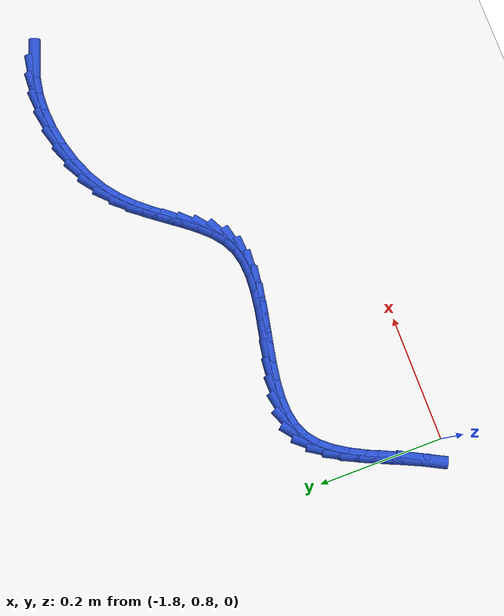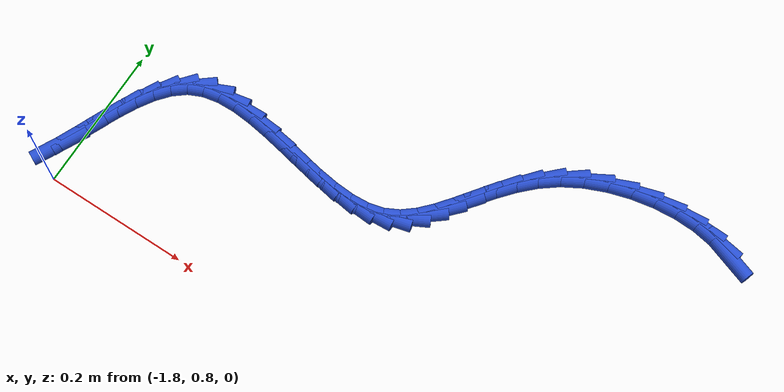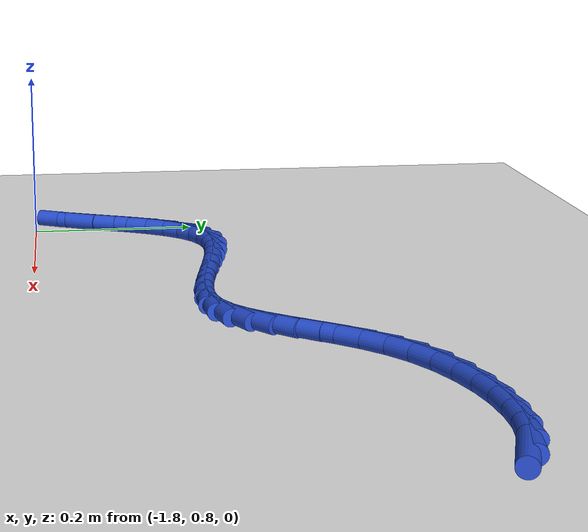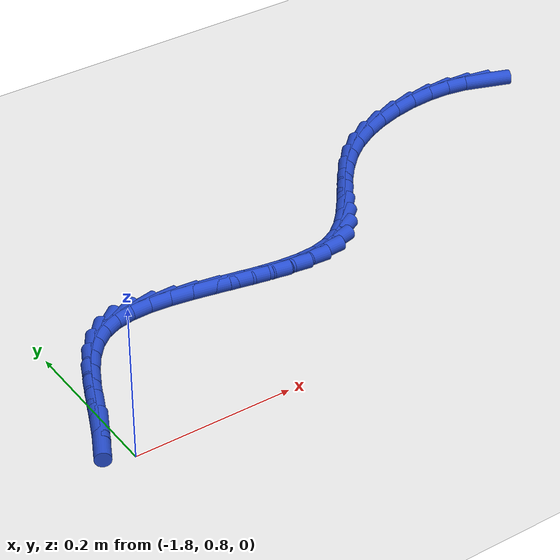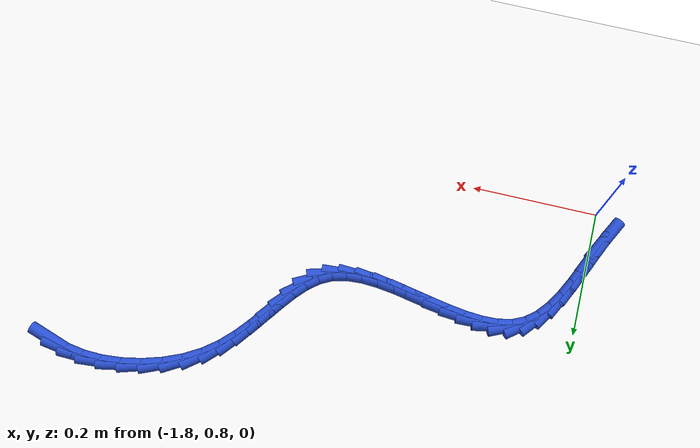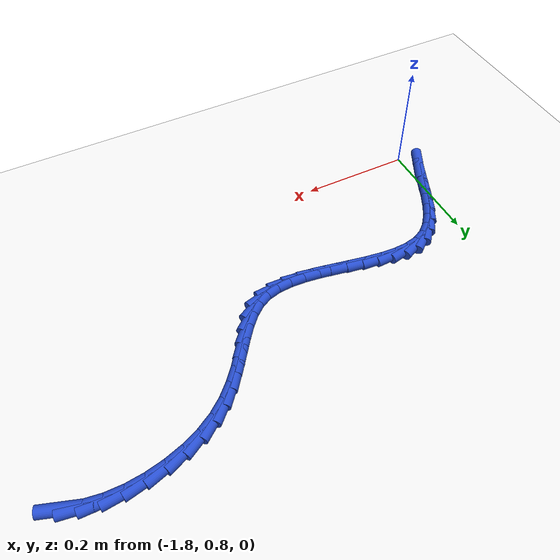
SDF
<sdf version="1.6">
 <world name="default">
  <model name="ground_plane">
   <static>1</static>
   <link name="link">
    <collision name="collision">
     <geometry><plane><normal>0 0 1</normal><size>100 100</size></plane></geometry>
     <surface><friction><ode><mu>100</mu><mu2>50</mu2></ode></friction></surface>
    </collision>
    <visual name="visual">
     <cast_shadows>0</cast_shadows>
     <geometry><plane><normal>0 0 1</normal><size>100 100</size></plane></geometry>
     <material>
      <script><uri>file://media/materials/scripts/gazebo.material</uri><name>Gazebo/WhiteGlow</name></script>
     </material>
    </visual>
   </link>
  </model>
  <model name="line">
   <link name="link_71">
    <pose>-1.0109666038102227 1.1925617814501899 0.01 0 1.57 -0.3342853103051633</pose>
    <collision name="collision">
     <geometry><cylinder><radius>0.01</radius><length>0.08</length></cylinder></geometry>
    </collision>
    <visual name="visual">
     <material>
      <script><name>Gazebo/Blue</name><uri>file://media/materials/scripts/gazebo.material</uri></script>
     </material>
     <geometry><cylinder><radius>0.01</radius><length>0.08</length></cylinder></geometry>
    </visual>
   </link>
   <link name="link_72">
    <pose>-1.035257805652852 1.2009986019730625 0.01 0 1.57 -0.16570383894547938</pose>
    <collision name="collision">
     <geometry><cylinder><radius>0.01</radius><length>0.08</length></cylinder></geometry>
    </collision>
    <visual name="visual">
     <material>
      <script><name>Gazebo/Blue</name><uri>file://media/materials/scripts/gazebo.material</uri></script>
     </material>
     <geometry><cylinder><radius>0.01</radius><length>0.08</length></cylinder></geometry>
    </visual>
   </link>
   <link name="link_73">
    <pose>-1.0629353074898786 1.2056273127121695 0.01 0 1.57 -0.03141031880779321</pose>
    <collision name="collision">
     <geometry><cylinder><radius>0.01</radius><length>0.08</length></cylinder></geometry>
    </collision>
    <visual name="visual">
     <material>
      <script><name>Gazebo/Blue</name><uri>file://media/materials/scripts/gazebo.material</uri></script>
     </material>
     <geometry><cylinder><radius>0.01</radius><length>0.08</length></cylinder></geometry>
    </visual>
   </link>
   <link name="link_74">
    <pose>-1.093008447589441 1.2065722304051816 0.01 0 1.57 0.08286934360039021</pose>
    <collision name="collision">
     <geometry><cylinder><radius>0.01</radius><length>0.08</length></cylinder></geometry>
    </collision>
    <visual name="visual">
     <material>
      <script><name>Gazebo/Blue</name><uri>file://media/materials/scripts/gazebo.material</uri></script>
     </material>
     <geometry><cylinder><radius>0.01</radius><length>0.08</length></cylinder></geometry>
    </visual>
   </link>
   <link name="link_75">
    <pose>-1.1244865642196784 1.2039576717897713 0.01 0 1.57 0.1874640280628882</pose>
    <collision name="collision">
     <geometry><cylinder><radius>0.01</radius><length>0.08</length></cylinder></geometry>
    </collision>
    <visual name="visual">
     <material>
      <script><name>Gazebo/Blue</name><uri>file://media/materials/scripts/gazebo.material</uri></script>
     </material>
     <geometry><cylinder><radius>0.01</radius><length>0.08</length></cylinder></geometry>
    </visual>
   </link>
   <link name="link_76">
    <pose>-1.1563789956487294 1.1979079536036106 0.01 0 1.57 0.29045268991197265</pose>
    <collision name="collision">
     <geometry><cylinder><radius>0.01</radius><length>0.08</length></cylinder></geometry>
    </collision>
    <visual name="visual">
     <material>
      <script><name>Gazebo/Blue</name><uri>file://media/materials/scripts/gazebo.material</uri></script>
     </material>
     <geometry><cylinder><radius>0.01</radius><length>0.08</length></cylinder></geometry>
    </visual>
   </link>
   <link name="link_77">
    <pose>-1.1876950801447332 1.1885473925843708 0.01 0 1.57 0.3991264765575888</pose>
    <collision name="collision">
     <geometry><cylinder><radius>0.01</radius><length>0.08</length></cylinder></geometry>
    </collision>
    <visual name="visual">
     <material>
      <script><name>Gazebo/Blue</name><uri>file://media/materials/scripts/gazebo.material</uri></script>
     </material>
     <geometry><cylinder><radius>0.01</radius><length>0.08</length></cylinder></geometry>
    </visual>
   </link>
   <link name="link_78">
    <pose>-1.2174441559758291 1.1760003054697243 0.01 0 1.57 0.5211219778421812</pose>
    <collision name="collision">
     <geometry><cylinder><radius>0.01</radius><length>0.08</length></cylinder></geometry>
    </collision>
    <visual name="visual">
     <material>
      <script><name>Gazebo/Blue</name><uri>file://media/materials/scripts/gazebo.material</uri></script>
     </material>
     <geometry><cylinder><radius>0.01</radius><length>0.08</length></cylinder></geometry>
    </visual>
   </link>
   <link name="link_79">
    <pose>-1.2446355614101559 1.1603910089973428 0.01 0 1.57 0.6593469376571012</pose>
    <collision name="collision">
     <geometry><cylinder><radius>0.01</radius><length>0.08</length></cylinder></geometry>
    </collision>
    <visual name="visual">
     <material>
      <script><name>Gazebo/Blue</name><uri>file://media/materials/scripts/gazebo.material</uri></script>
     </material>
     <geometry><cylinder><radius>0.01</radius><length>0.08</length></cylinder></geometry>
    </visual>
   </link>
   <link name="link_80">
    <pose>-1.268460172441999 1.1419255294227955 0.01 0 1.57 0.7816400615174119</pose>
    <collision name="collision">
     <geometry><cylinder><radius>0.01</radius><length>0.08</length></cylinder></geometry>
    </collision>
    <visual name="visual">
     <material>
      <script><name>Gazebo/Blue</name><uri>file://media/materials/scripts/gazebo.material</uri></script>
     </material>
     <geometry><cylinder><radius>0.01</radius><length>0.08</length></cylinder></geometry>
    </visual>
   </link>
   <link name="link_81">
    <pose>-1.2892277237875105 1.121313487536508 0.01 0 1.57 0.869834839244422</pose>
    <collision name="collision">
     <geometry><cylinder><radius>0.01</radius><length>0.08</length></cylinder></geometry>
    </collision>
    <visual name="visual">
     <material>
      <script><name>Gazebo/Blue</name><uri>file://media/materials/scripts/gazebo.material</uri></script>
     </material>
     <geometry><cylinder><radius>0.01</radius><length>0.08</length></cylinder></geometry>
    </visual>
   </link>
   <link name="link_82">
    <pose>-1.307673826097418 1.0994561894498418 0.01 0 1.57 0.9212562566497868</pose>
    <collision name="collision">
     <geometry><cylinder><radius>0.01</radius><length>0.08</length></cylinder></geometry>
    </collision>
    <visual name="visual">
     <material>
      <script><name>Gazebo/Blue</name><uri>file://media/materials/scripts/gazebo.material</uri></script>
     </material>
     <geometry><cylinder><radius>0.01</radius><length>0.08</length></cylinder></geometry>
    </visual>
   </link>
   <link name="link_83">
    <pose>-1.324534921837413 1.077255315671264 0.01 0 1.57 0.9338190762296164</pose>
    <collision name="collision">
     <geometry><cylinder><radius>0.01</radius><length>0.08</length></cylinder></geometry>
    </collision>
    <visual name="visual">
     <material>
      <script><name>Gazebo/Blue</name><uri>file://media/materials/scripts/gazebo.material</uri></script>
     </material>
     <geometry><cylinder><radius>0.01</radius><length>0.08</length></cylinder></geometry>
    </visual>
   </link>
   <link name="link_84">
    <pose>-1.3405474534731863 1.0556125467092436 0.01 0 1.57 0.9035309947150487</pose>
    <collision name="collision">
     <geometry><cylinder><radius>0.01</radius><length>0.08</length></cylinder></geometry>
    </collision>
    <visual name="visual">
     <material>
      <script><name>Gazebo/Blue</name><uri>file://media/materials/scripts/gazebo.material</uri></script>
     </material>
     <geometry><cylinder><radius>0.01</radius><length>0.08</length></cylinder></geometry>
    </visual>
   </link>
   <link name="link_85">
    <pose>-1.3564478634704278 1.0354295630722483 0.01 0 1.57 0.8231365293390003</pose>
    <collision name="collision">
     <geometry><cylinder><radius>0.01</radius><length>0.08</length></cylinder></geometry>
    </collision>
    <visual name="visual">
     <material>
      <script><name>Gazebo/Blue</name><uri>file://media/materials/scripts/gazebo.material</uri></script>
     </material>
     <geometry><cylinder><radius>0.01</radius><length>0.08</length></cylinder></geometry>
    </visual>
   </link>
   <link name="link_86">
    <pose>-1.3729725942948297 1.0176080452687455 0.01 0 1.57 0.6832052717225015</pose>
    <collision name="collision">
     <geometry><cylinder><radius>0.01</radius><length>0.08</length></cylinder></geometry>
    </collision>
    <visual name="visual">
     <material>
      <script><name>Gazebo/Blue</name><uri>file://media/materials/scripts/gazebo.material</uri></script>
     </material>
     <geometry><cylinder><radius>0.01</radius><length>0.08</length></cylinder></geometry>
    </visual>
   </link>
   <link name="link_87">
    <pose>-1.3908580884120818 1.0030496738072034 0.01 0 1.57 0.4796244364752886</pose>
    <collision name="collision">
     <geometry><cylinder><radius>0.01</radius><length>0.08</length></cylinder></geometry>
    </collision>
    <visual name="visual">
     <material>
      <script><name>Gazebo/Blue</name><uri>file://media/materials/scripts/gazebo.material</uri></script>
     </material>
     <geometry><cylinder><radius>0.01</radius><length>0.08</length></cylinder></geometry>
    </visual>
   </link>
   <link name="link_88">
    <pose>-1.4108407232222935 0.9926560343684857 0.01 0 1.57 0.24694636733877406</pose>
    <collision name="collision">
     <geometry><cylinder><radius>0.01</radius><length>0.08</length></cylinder></geometry>
    </collision>
    <visual name="visual">
     <material>
      <script><name>Gazebo/Blue</name><uri>file://media/materials/scripts/gazebo.material</uri></script>
     </material>
     <geometry><cylinder><radius>0.01</radius><length>0.08</length></cylinder></geometry>
    </visual>
   </link>
   <link name="link_89">
    <pose>-1.4334085932479042 0.9869668612557813 0.01 0 1.57 0.06535604649514655</pose>
    <collision name="collision">
     <geometry><cylinder><radius>0.01</radius><length>0.08</length></cylinder></geometry>
    </collision>
    <visual name="visual">
     <material>
      <script><name>Gazebo/Blue</name><uri>file://media/materials/scripts/gazebo.material</uri></script>
     </material>
     <geometry><cylinder><radius>0.01</radius><length>0.08</length></cylinder></geometry>
    </visual>
   </link>
   <link name="link_90">
    <pose>-1.4582399871167897 0.9853416649028445 0.01 0 1.57 -0.05848861458791421</pose>
    <collision name="collision">
     <geometry><cylinder><radius>0.01</radius><length>0.08</length></cylinder></geometry>
    </collision>
    <visual name="visual">
     <material>
      <script><name>Gazebo/Blue</name><uri>file://media/materials/scripts/gazebo.material</uri></script>
     </material>
     <geometry><cylinder><radius>0.01</radius><length>0.08</length></cylinder></geometry>
    </visual>
   </link>
   <link name="link_91">
    <pose>-1.484848362843575 0.9868997290107299 0.01 0 1.57 -0.13750568170730054</pose>
    <collision name="collision">
     <geometry><cylinder><radius>0.01</radius><length>0.08</length></cylinder></geometry>
    </collision>
    <visual name="visual">
     <material>
      <script><name>Gazebo/Blue</name><uri>file://media/materials/scripts/gazebo.material</uri></script>
     </material>
     <geometry><cylinder><radius>0.01</radius><length>0.08</length></cylinder></geometry>
    </visual>
   </link>
   <link name="link_92">
    <pose>-1.5127471784428845 0.9907603372804923 0.01 0 1.57 -0.18200299643530365</pose>
    <collision name="collision">
     <geometry><cylinder><radius>0.01</radius><length>0.08</length></cylinder></geometry>
    </collision>
    <visual name="visual">
     <material>
      <script><name>Gazebo/Blue</name><uri>file://media/materials/scripts/gazebo.material</uri></script>
     </material>
     <geometry><cylinder><radius>0.01</radius><length>0.08</length></cylinder></geometry>
    </visual>
   </link>
   <link name="link_93">
    <pose>-1.5414498919293462 0.9960427734131877 0.01 0 1.57 -0.19804270112448627</pose>
    <collision name="collision">
     <geometry><cylinder><radius>0.01</radius><length>0.08</length></cylinder></geometry>
    </collision>
    <visual name="visual">
     <material>
      <script><name>Gazebo/Blue</name><uri>file://media/materials/scripts/gazebo.material</uri></script>
     </material>
     <geometry><cylinder><radius>0.01</radius><length>0.08</length></cylinder></geometry>
    </visual>
   </link>
   <link name="link_94">
    <pose>-1.5704699613175832 1.0018663211098708 0.01 0 1.57 -0.187838056191122</pose>
    <collision name="collision">
     <geometry><cylinder><radius>0.01</radius><length>0.08</length></cylinder></geometry>
    </collision>
    <visual name="visual">
     <material>
      <script><name>Gazebo/Blue</name><uri>file://media/materials/scripts/gazebo.material</uri></script>
     </material>
     <geometry><cylinder><radius>0.01</radius><length>0.08</length></cylinder></geometry>
    </visual>
   </link>
   <link name="link_95">
    <pose>-1.599320844622222 1.0073502640715961 0.01 0 1.57 -0.15008117304217702</pose>
    <collision name="collision">
     <geometry><cylinder><radius>0.01</radius><length>0.08</length></cylinder></geometry>
    </collision>
    <visual name="visual">
     <material>
      <script><name>Gazebo/Blue</name><uri>file://media/materials/scripts/gazebo.material</uri></script>
     </material>
     <geometry><cylinder><radius>0.01</radius><length>0.08</length></cylinder></geometry>
    </visual>
   </link>
   <link name="link_96">
    <pose>-1.6275159998578874 1.0116138859994195 0.01 0 1.57 -0.07976952049292627</pose>
    <collision name="collision">
     <geometry><cylinder><radius>0.01</radius><length>0.08</length></cylinder></geometry>
    </collision>
    <visual name="visual">
     <material>
      <script><name>Gazebo/Blue</name><uri>file://media/materials/scripts/gazebo.material</uri></script>
     </material>
     <geometry><cylinder><radius>0.01</radius><length>0.08</length></cylinder></geometry>
    </visual>
   </link>
   <link name="link_97">
    <pose>-1.6545688850392049 1.0137764705943952 0.01 0 1.57 0.032209069625093664</pose>
    <collision name="collision">
     <geometry><cylinder><radius>0.01</radius><length>0.08</length></cylinder></geometry>
    </collision>
    <visual name="visual">
     <material>
      <script><name>Gazebo/Blue</name><uri>file://media/materials/scripts/gazebo.material</uri></script>
     </material>
     <geometry><cylinder><radius>0.01</radius><length>0.08</length></cylinder></geometry>
    </visual>
   </link>
   <link name="link_98">
    <pose>-1.6799929581807995 1.0129573015575788 0.01 0 1.57 0.19821614559104989</pose>
    <collision name="collision">
     <geometry><cylinder><radius>0.01</radius><length>0.08</length></cylinder></geometry>
    </collision>
    <visual name="visual">
     <material>
      <script><name>Gazebo/Blue</name><uri>file://media/materials/scripts/gazebo.material</uri></script>
     </material>
     <geometry><cylinder><radius>0.01</radius><length>0.08</length></cylinder></geometry>
    </visual>
   </link>
   <link name="link_99">
    <pose>-1.7033016772972975 1.0082756625900253 0.01 0 1.57 0.4268867244522433</pose>
    <collision name="collision">
     <geometry><cylinder><radius>0.01</radius><length>0.08</length></cylinder></geometry>
    </collision>
    <visual name="visual">
     <material>
      <script><name>Gazebo/Blue</name><uri>file://media/materials/scripts/gazebo.material</uri></script>
     </material>
     <geometry><cylinder><radius>0.01</radius><length>0.08</length></cylinder></geometry>
    </visual>
   </link>
   <link name="link_100">
    <pose>-1.7240112265048468 0.9988557525972179 0.01 0 1.57 0.6782457143143431</pose>
    <collision name="collision">
     <geometry><cylinder><radius>0.01</radius><length>0.08</length></cylinder></geometry>
    </collision>
    <visual name="visual">
     <material>
      <script><name>Gazebo/Blue</name><uri>file://media/materials/scripts/gazebo.material</uri></script>
     </material>
     <geometry><cylinder><radius>0.01</radius><length>0.08</length></cylinder></geometry>
    </visual>
   </link>
   <link name="link_101">
    <pose>-1.7419563801029105 0.9843961936548536 0.01 0 1.57 0.8745279619483493</pose>
    <collision name="collision">
     <geometry><cylinder><radius>0.01</radius><length>0.08</length></cylinder></geometry>
    </collision>
    <visual name="visual">
     <material>
      <script><name>Gazebo/Blue</name><uri>file://media/materials/scripts/gazebo.material</uri></script>
     </material>
     <geometry><cylinder><radius>0.01</radius><length>0.08</length></cylinder></geometry>
    </visual>
   </link>
   <link name="link_102">
    <pose>-1.7575846920861433 0.9657004593801831 0.01 0 1.57 1.0096930201901795</pose>
    <collision name="collision">
     <geometry><cylinder><radius>0.01</radius><length>0.08</length></cylinder></geometry>
    </collision>
    <visual name="visual">
     <material>
      <script><name>Gazebo/Blue</name><uri>file://media/materials/scripts/gazebo.material</uri></script>
     </material>
     <geometry><cylinder><radius>0.01</radius><length>0.08</length></cylinder></geometry>
    </visual>
   </link>
   <link name="link_103">
    <pose>-1.771413294853627 0.9436974743608334 0.01 0 1.57 1.0955564072837047</pose>
    <collision name="collision">
     <geometry><cylinder><radius>0.01</radius><length>0.08</length></cylinder></geometry>
    </collision>
    <visual name="visual">
     <material>
      <script><name>Gazebo/Blue</name><uri>file://media/materials/scripts/gazebo.material</uri></script>
     </material>
     <geometry><cylinder><radius>0.01</radius><length>0.08</length></cylinder></geometry>
    </visual>
   </link>
   <link name="link_104">
    <pose>-1.7839593208044442 0.919316163184432 0.01 0 1.57 1.142907080044236</pose>
    <collision name="collision">
     <geometry><cylinder><radius>0.01</radius><length>0.08</length></cylinder></geometry>
    </collision>
    <visual name="visual">
     <material>
      <script><name>Gazebo/Blue</name><uri>file://media/materials/scripts/gazebo.material</uri></script>
     </material>
     <geometry><cylinder><radius>0.01</radius><length>0.08</length></cylinder></geometry>
    </visual>
   </link>
   <link name="link_105">
    <pose>-1.7957399023376763 0.8934854504386062 0.01 0 1.57 1.158270458247874</pose>
    <collision name="collision">
     <geometry><cylinder><radius>0.01</radius><length>0.08</length></cylinder></geometry>
    </collision>
    <visual name="visual">
     <material>
      <script><name>Gazebo/Blue</name><uri>file://media/materials/scripts/gazebo.material</uri></script>
     </material>
     <geometry><cylinder><radius>0.01</radius><length>0.08</length></cylinder></geometry>
    </visual>
   </link>
   <link name="link_106">
    <pose>-1.8072721718524052 0.8671342607109827 0.01 0 1.57 1.143883452726162</pose>
    <collision name="collision">
     <geometry><cylinder><radius>0.01</radius><length>0.08</length></cylinder></geometry>
    </collision>
    <visual name="visual">
     <material>
      <script><name>Gazebo/Blue</name><uri>file://media/materials/scripts/gazebo.material</uri></script>
     </material>
     <geometry><cylinder><radius>0.01</radius><length>0.08</length></cylinder></geometry>
    </visual>
   </link>
   <link name="link_107">
    <pose>-1.8190732617477121 0.8411915185891887 0.01 0 1.57 1.0981838672136532</pose>
    <collision name="collision">
     <geometry><cylinder><radius>0.01</radius><length>0.08</length></cylinder></geometry>
    </collision>
    <visual name="visual">
     <material>
      <script><name>Gazebo/Blue</name><uri>file://media/materials/scripts/gazebo.material</uri></script>
     </material>
     <geometry><cylinder><radius>0.01</radius><length>0.08</length></cylinder></geometry>
    </visual>
   </link>
  </model>
 </world>
</sdf>
